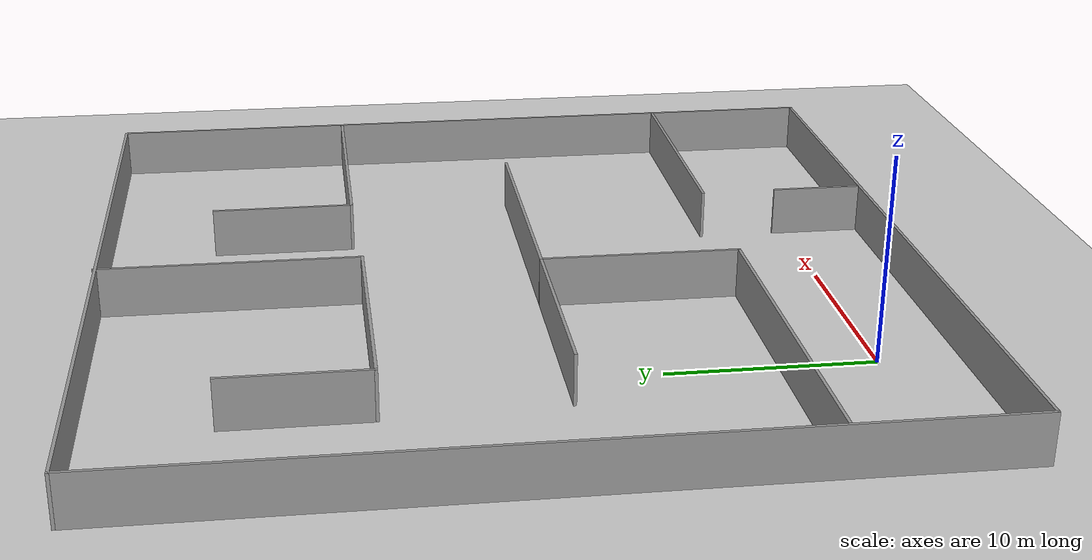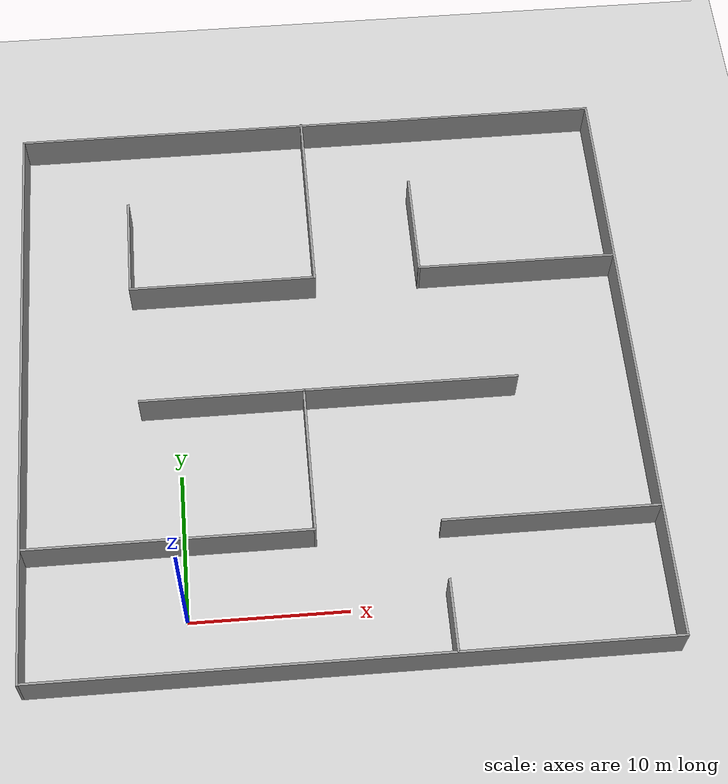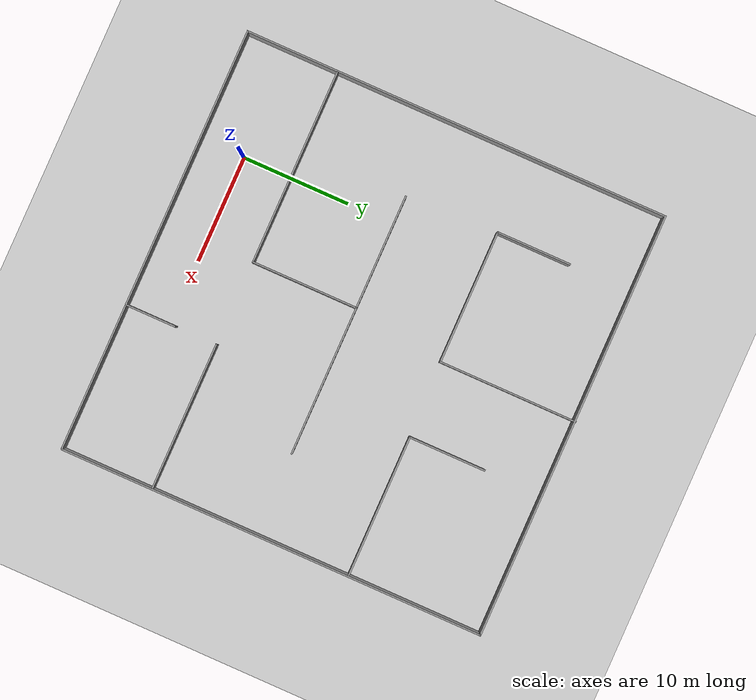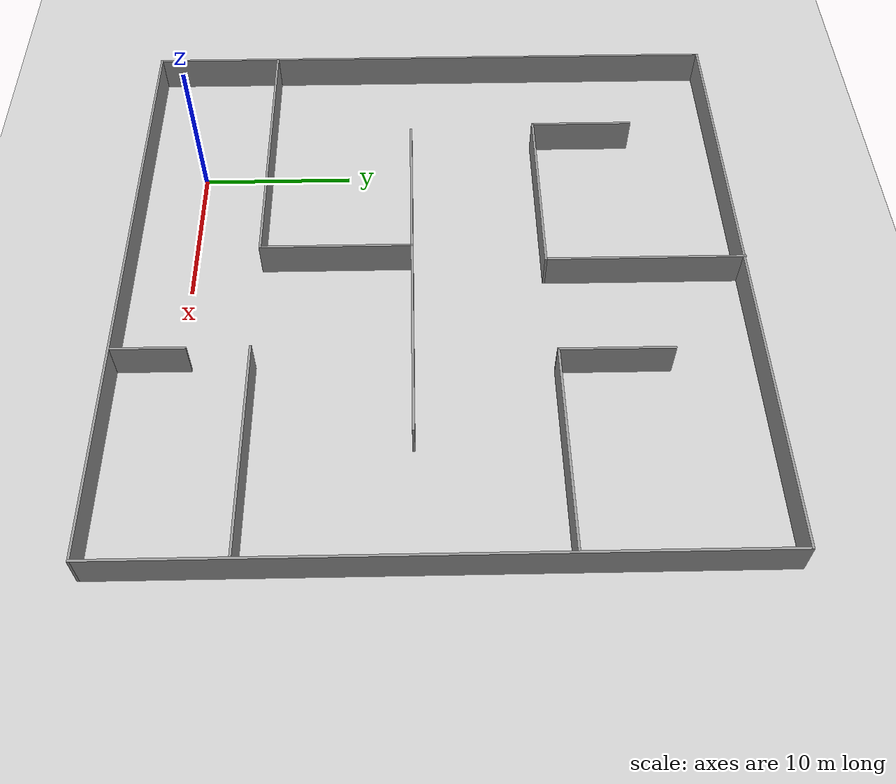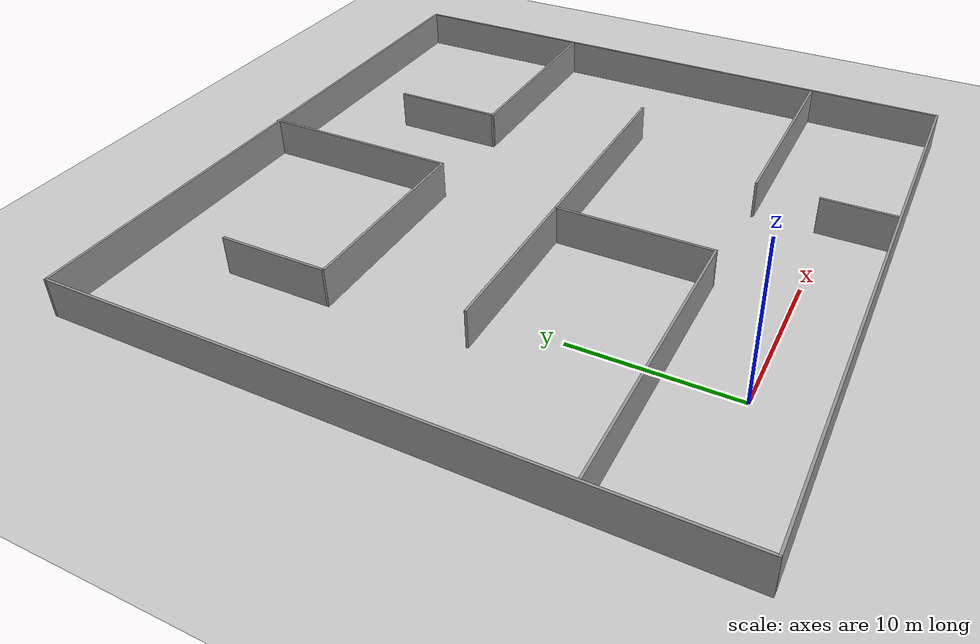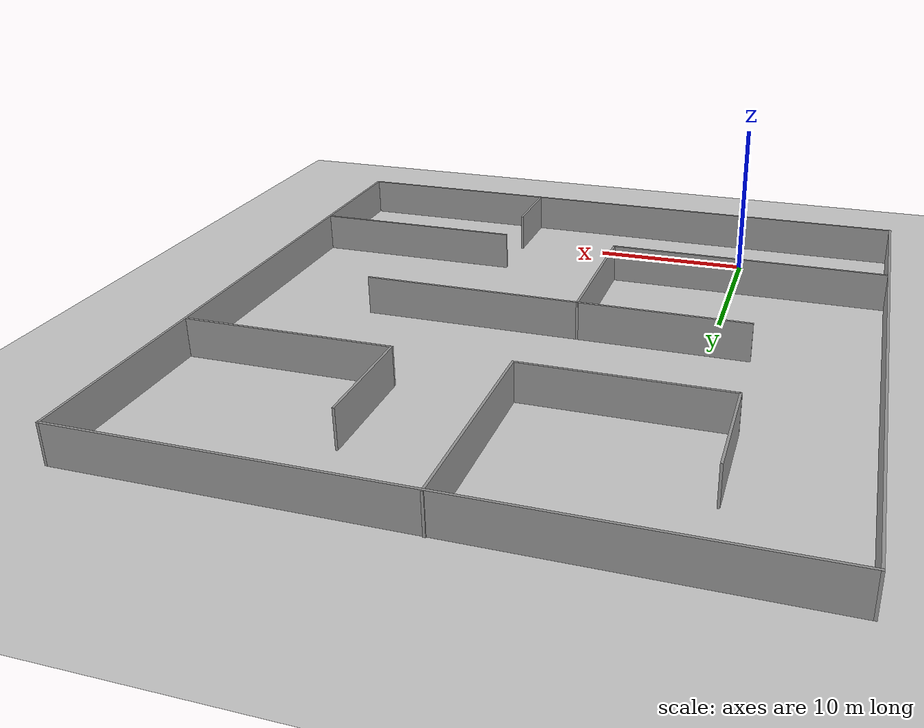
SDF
<sdf version="1.7">
 <world name="default">
  <light name="sun" type="directional">
   <pose>0 0 10 0 -0 0</pose>
   <diffuse>0.8 0.8 0.8 1</diffuse>
   <specular>0.2 0.2 0.2 1</specular>
   <attenuation>
    <range>1000</range>
    <constant>0.9</constant>
    <linear>0.01</linear>
    <quadratic>0.001</quadratic>
   </attenuation>
   <direction>-0.5 0.1 -0.9</direction>
   <spot><inner_angle>0</inner_angle><outer_angle>0</outer_angle><falloff>0</falloff></spot>
  </light>
  <model name="ground_plane">
   <static>1</static>
   <link name="link">
    <collision name="collision">
     <geometry><plane><normal>0 0 1</normal><size>100 100</size></plane></geometry>
     <surface><friction><ode><mu>100</mu><mu2>50</mu2></ode></friction></surface>
    </collision>
    <visual name="visual">
     <cast_shadows>0</cast_shadows>
     <geometry><plane><normal>0 0 1</normal><size>100 100</size></plane></geometry>
     <material>
      <script><uri>file://media/materials/scripts/gazebo.material</uri><name>Gazebo/Grey</name></script>
     </material>
    </visual>
   </link>
  </model>
  <gravity>0 0 -9.8</gravity>
  <magnetic_field>6e-06 2.3e-05 -4.2e-05</magnetic_field>
  <atmosphere type="adiabatic"/>
  <physics type="ode">
   <max_step_size>0.001</max_step_size>
   <real_time_factor>1</real_time_factor>
   <real_time_update_rate>1000</real_time_update_rate>
  </physics>
  <scene><ambient>0.4 0.4 0.4 1</ambient><background>0.7 0.7 0.7 1</background><shadows>1</shadows></scene>
  <audio><device>default</device></audio>
  <spherical_coordinates>
   <surface_model>EARTH_WGS84</surface_model>
   <latitude_deg>0</latitude_deg>
   <longitude_deg>0</longitude_deg>
   <elevation>0</elevation>
   <heading_deg>0</heading_deg>
  </spherical_coordinates>
  <model name="room">
   <pose>11.4307 15.9385 0 0 -0 0</pose>
   <link name="Wall_0">
    <collision name="Wall_0_Collision">
     <geometry><box><size>40 0.15 2.5</size></box></geometry>
     <pose>0 0 1.25 0 -0 0</pose>
    </collision>
    <visual name="Wall_0_Visual">
     <pose>0 0 1.25 0 -0 0</pose>
     <geometry><box><size>40 0.15 2.5</size></box></geometry>
     <material>
      <script><uri>file://media/materials/scripts/gazebo.material</uri><name>Gazebo/Grey</name></script>
      <ambient>1 1 1 1</ambient>
     </material>
     <meta><layer>0</layer></meta>
    </visual>
    <pose>-1.5565 19.893 0 0 -0 0</pose>
   </link>
   <link name="Wall_11">
    <collision name="Wall_11_Collision">
     <geometry><box><size>18.25 0.15 2.5</size></box></geometry>
     <pose>0 0 1.25 0 -0 0</pose>
    </collision>
    <visual name="Wall_11_Visual">
     <pose>0 0 1.25 0 -0 0</pose>
     <geometry><box><size>18.25 0.15 2.5</size></box></geometry>
     <material>
      <script><uri>file://media/materials/scripts/gazebo.material</uri><name>Gazebo/Grey</name></script>
      <ambient>1 1 1 1</ambient>
     </material>
     <meta><layer>0</layer></meta>
    </visual>
    <pose>-12.3197 -11.3529 0 0 -0 0</pose>
   </link>
   <link name="Wall_12">
    <collision name="Wall_12_Collision">
     <geometry><box><size>10 0.15 2.5</size></box></geometry>
     <pose>0 0 1.25 0 -0 0</pose>
    </collision>
    <visual name="Wall_12_Visual">
     <pose>0 0 1.25 0 -0 0</pose>
     <geometry><box><size>10 0.15 2.5</size></box></geometry>
     <material>
      <script><uri>file://media/materials/scripts/gazebo.material</uri><name>Gazebo/Grey</name></script>
      <ambient>1 1 1 1</ambient>
     </material>
     <meta><layer>0</layer></meta>
    </visual>
    <pose>-3.26965 -6.42793 0 0 -0 1.5708</pose>
   </link>
   <link name="Wall_13">
    <collision name="Wall_13_Collision">
     <geometry><box><size>14 0.15 2.5</size></box></geometry>
     <pose>0 0 1.25 0 -0 0</pose>
    </collision>
    <visual name="Wall_13_Visual">
     <pose>0 0 1.25 0 -0 0</pose>
     <geometry><box><size>14 0.15 2.5</size></box></geometry>
     <material>
      <script><uri>file://media/materials/scripts/gazebo.material</uri><name>Gazebo/Grey</name></script>
      <ambient>1 1 1 1</ambient>
     </material>
     <meta><layer>0</layer></meta>
    </visual>
    <pose>3.65535 -1.50293 0 0 -0 0</pose>
   </link>
   <link name="Wall_17">
    <collision name="Wall_17_Collision">
     <geometry><box><size>13.75 0.15 2.5</size></box></geometry>
     <pose>0 0 1.25 0 -0 0</pose>
    </collision>
    <visual name="Wall_17_Visual">
     <pose>0 0 1.25 0 -0 0</pose>
     <geometry><box><size>13.75 0.15 2.5</size></box></geometry>
     <material>
      <script><uri>file://media/materials/scripts/gazebo.material</uri><name>Gazebo/Grey</name></script>
      <ambient>1 1 1 1</ambient>
     </material>
     <meta><layer>0</layer></meta>
    </visual>
    <pose>11.4188 -11.3529 0 0 -0 0</pose>
   </link>
   <link name="Wall_19">
    <collision name="Wall_19_Collision">
     <geometry><box><size>4.75 0.15 2.5</size></box></geometry>
     <pose>0 0 1.25 0 -0 0</pose>
    </collision>
    <visual name="Wall_19_Visual">
     <pose>0 0 1.25 0 -0 0</pose>
     <geometry><box><size>4.75 0.15 2.5</size></box></geometry>
     <material>
      <script><uri>file://media/materials/scripts/gazebo.material</uri><name>Gazebo/Grey</name></script>
      <ambient>1 1 1 1</ambient>
     </material>
     <meta><layer>0</layer></meta>
    </visual>
    <pose>4.6188 -17.6131 0 0 -0 -1.5708</pose>
   </link>
   <link name="Wall_2">
    <collision name="Wall_2_Collision">
     <geometry><box><size>40 0.15 2.5</size></box></geometry>
     <pose>0 0 1.25 0 -0 0</pose>
    </collision>
    <visual name="Wall_2_Visual">
     <pose>0 0 1.25 0 -0 0</pose>
     <geometry><box><size>40 0.15 2.5</size></box></geometry>
     <material>
      <script><uri>file://media/materials/scripts/gazebo.material</uri><name>Gazebo/Grey</name></script>
      <ambient>1 1 1 1</ambient>
     </material>
     <meta><layer>0</layer></meta>
    </visual>
    <pose>18.3685 -0.03197 0 0 -0 -1.5708</pose>
   </link>
   <link name="Wall_21">
    <collision name="Wall_21_Collision">
     <geometry><box><size>10.75 0.15 2.5</size></box></geometry>
     <pose>0 0 1.25 0 -0 0</pose>
    </collision>
    <visual name="Wall_21_Visual">
     <pose>0 0 1.25 0 -0 0</pose>
     <geometry><box><size>10.75 0.15 2.5</size></box></geometry>
     <material>
      <script><uri>file://media/materials/scripts/gazebo.material</uri><name>Gazebo/Grey</name></script>
      <ambient>1 1 1 1</ambient>
     </material>
     <meta><layer>0</layer></meta>
    </visual>
    <pose>-8.56965 -1.50293 0 0 -0 3.14159</pose>
   </link>
   <link name="Wall_23">
    <collision name="Wall_23_Collision">
     <geometry><box><size>13 0.15 2.5</size></box></geometry>
     <pose>0 0 1.25 0 -0 0</pose>
    </collision>
    <visual name="Wall_23_Visual">
     <pose>0 0 1.25 0 -0 0</pose>
     <geometry><box><size>13 0.15 2.5</size></box></geometry>
     <material>
      <script><uri>file://media/materials/scripts/gazebo.material</uri><name>Gazebo/Grey</name></script>
      <ambient>1 1 1 1</ambient>
     </material>
     <meta><layer>0</layer></meta>
    </visual>
    <pose>-1.94019 13.532 0 0 -0 -1.5708</pose>
   </link>
   <link name="Wall_24">
    <collision name="Wall_24_Collision">
     <geometry><box><size>12.5 0.15 2.5</size></box></geometry>
     <pose>0 0 1.25 0 -0 0</pose>
    </collision>
    <visual name="Wall_24_Visual">
     <pose>0 0 1.25 0 -0 0</pose>
     <geometry><box><size>12.5 0.15 2.5</size></box></geometry>
     <material>
      <script><uri>file://media/materials/scripts/gazebo.material</uri><name>Gazebo/Grey</name></script>
      <ambient>1 1 1 1</ambient>
     </material>
     <meta><layer>0</layer></meta>
    </visual>
    <pose>-8.11519 7.10697 0 0 -0 3.14159</pose>
   </link>
   <link name="Wall_25">
    <collision name="Wall_25_Collision">
     <geometry><box><size>7 0.15 2.5</size></box></geometry>
     <pose>0 0 1.25 0 -0 0</pose>
    </collision>
    <visual name="Wall_25_Visual">
     <pose>0 0 1.25 0 -0 0</pose>
     <geometry><box><size>7 0.15 2.5</size></box></geometry>
     <material>
      <script><uri>file://media/materials/scripts/gazebo.material</uri><name>Gazebo/Grey</name></script>
      <ambient>1 1 1 1</ambient>
     </material>
     <meta><layer>0</layer></meta>
    </visual>
    <pose>-14.2902 10.532 0 0 -0 1.5708</pose>
   </link>
   <link name="Wall_27">
    <collision name="Wall_27_Collision">
     <geometry><box><size>13.25 0.15 2.5</size></box></geometry>
     <pose>0 0 1.25 0 -0 0</pose>
    </collision>
    <visual name="Wall_27_Visual">
     <pose>0 0 1.25 0 -0 0</pose>
     <geometry><box><size>13.25 0.15 2.5</size></box></geometry>
     <material>
      <script><uri>file://media/materials/scripts/gazebo.material</uri><name>Gazebo/Grey</name></script>
      <ambient>1 1 1 1</ambient>
     </material>
     <meta><layer>0</layer></meta>
    </visual>
    <pose>11.6818 7.33401 0 0 -0 3.14159</pose>
   </link>
   <link name="Wall_30">
    <collision name="Wall_30_Collision">
     <geometry><box><size>7.25 0.15 2.5</size></box></geometry>
     <pose>0 0 1.25 0 -0 0</pose>
    </collision>
    <visual name="Wall_30_Visual">
     <pose>0 0 1.25 0 -0 0</pose>
     <geometry><box><size>7.25 0.15 2.5</size></box></geometry>
     <material>
      <script><uri>file://media/materials/scripts/gazebo.material</uri><name>Gazebo/Grey</name></script>
      <ambient>1 1 1 1</ambient>
     </material>
     <meta><layer>0</layer></meta>
    </visual>
    <pose>5.1318 10.884 0 0 -0 1.5708</pose>
   </link>
   <link name="Wall_6">
    <collision name="Wall_6_Collision">
     <geometry><box><size>40 0.15 2.5</size></box></geometry>
     <pose>0 0 1.25 0 -0 0</pose>
    </collision>
    <visual name="Wall_6_Visual">
     <pose>0 0 1.25 0 -0 0</pose>
     <geometry><box><size>40 0.15 2.5</size></box></geometry>
     <material>
      <script><uri>file://media/materials/scripts/gazebo.material</uri><name>Gazebo/Grey</name></script>
      <ambient>1 1 1 1</ambient>
     </material>
     <meta><layer>0</layer></meta>
    </visual>
    <pose>-1.5565 -19.957 0 0 -0 3.14159</pose>
   </link>
   <link name="Wall_8">
    <collision name="Wall_8_Collision">
     <geometry><box><size>40 0.15 2.5</size></box></geometry>
     <pose>0 0 1.25 0 -0 0</pose>
    </collision>
    <visual name="Wall_8_Visual">
     <pose>0 0 1.25 0 -0 0</pose>
     <geometry><box><size>40 0.15 2.5</size></box></geometry>
     <material>
      <script><uri>file://media/materials/scripts/gazebo.material</uri><name>Gazebo/Grey</name></script>
      <ambient>1 1 1 1</ambient>
     </material>
     <meta><layer>0</layer></meta>
    </visual>
    <pose>-21.4815 -0.03197 0 0 -0 -1.5708</pose>
   </link>
   <static>1</static>
  </model>
 </world>
</sdf>
